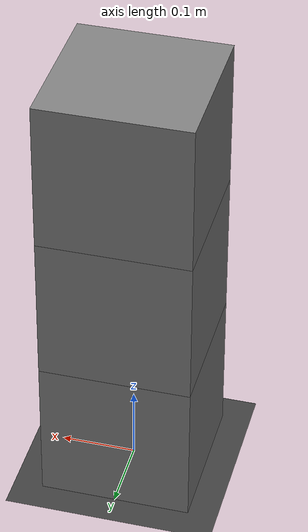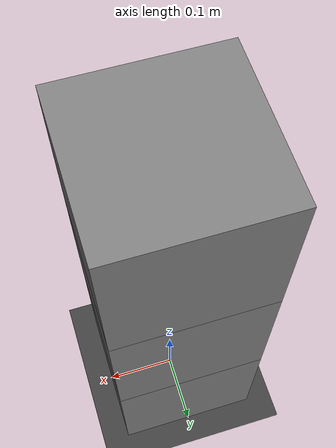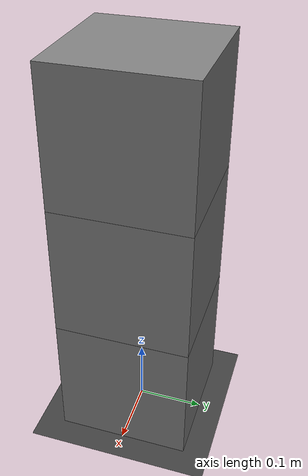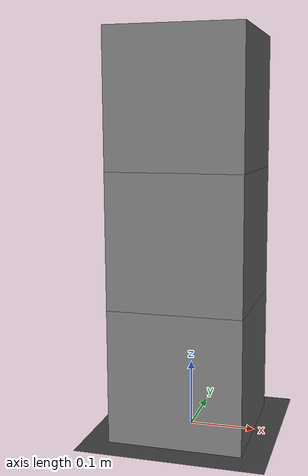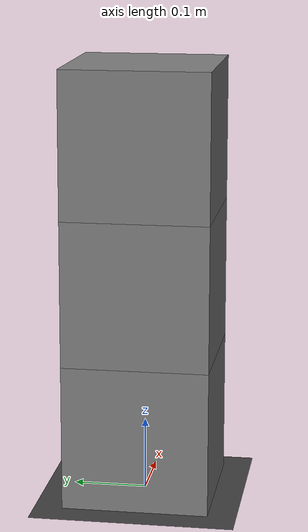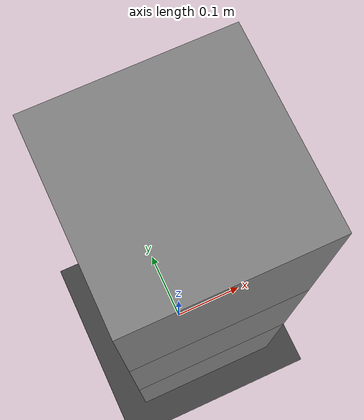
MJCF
<mujoco>
  <asset>
    <!-- チェッカーボードのテクスチャを定義 -->
    <texture name="chessboard" type="2d" builtin="checker" width="512" height="512" rgb1="0.2 0.2 0.2" rgb2="0.3 0.3 0.3" />
    <material name="mat_chessboard" texture="chessboard" texrepeat="10 10" texuniform="true"/>
  </asset>

  <default class="main">
    <geom type="box" size="0.1 0.1 0.1"/>
    <joint type="hinge" axis="0 0 1" range="-90 90" damping="0.01"/>
  </default>

  <worldbody>
    <!-- 地面にチェッカーボードのテクスチャを適用 -->
    <geom type="plane" size="10 10 0.1" material="mat_chessboard"/>

    <!-- アームの定義 -->
    <body name="b1" pos="0 0 0.1">
      <geom type="box" size="0.1 0.1 0.1"/>
      <joint name="joint1" type="hinge" axis="0 1 0" range="-90 90" damping="0.01"/>
      <body name="b2" pos="0 0 0.2">
        <geom type="box" size="0.1 0.1 0.1"/>
        <joint name="joint2" type="hinge" axis="1 0 0" range="-90 90" damping="0.01"/>
        <body name="b3" pos="0 0 0.2">
          <geom type="box" size="0.1 0.1 0.1"/>
          <joint name="joint3" type="hinge" axis="0 1 0" range="-90 90" damping="0.01"/>
        </body>
      </body>
    </body>
  </worldbody>

  <!-- アクチュエータの定義 -->
  <actuator>
    <motor joint="joint1" ctrlrange="-1 1" ctrllimited="true"/>
    <motor joint="joint2" ctrlrange="-1 1" ctrllimited="true"/>
    <motor joint="joint3" ctrlrange="-1 1" ctrllimited="true"/>
  </actuator>
</mujoco>
